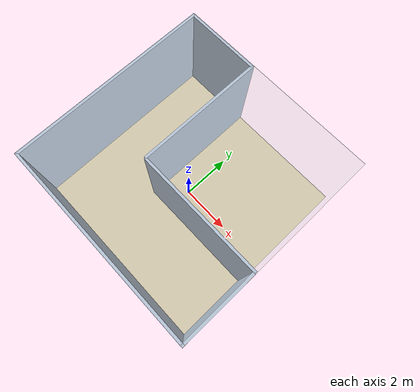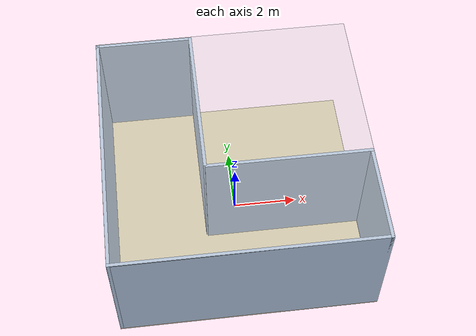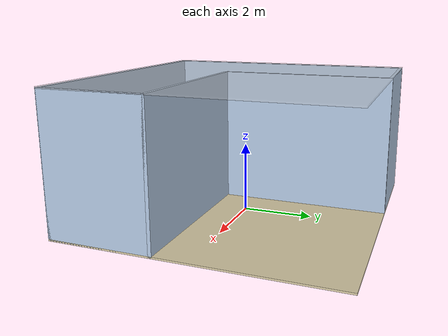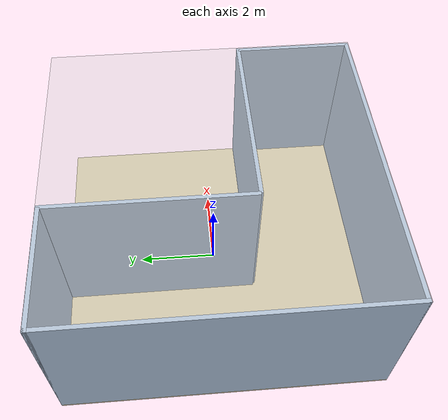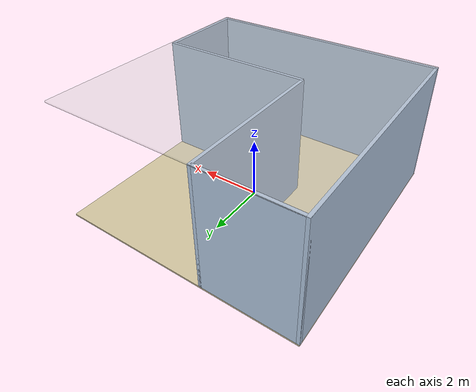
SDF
<sdf version="1.9">
 <world name="rl_room_L_corridor">
  <physics name="1ms" type="ignored">
   <max_step_size>0.001</max_step_size>
   <real_time_factor>1.0</real_time_factor>
  </physics>
  <plugin filename="gz-sim-physics-system" name="gz::sim::systems::Physics"/>
  <plugin filename="gz-sim-scene-broadcaster-system" name="gz::sim::systems::SceneBroadcaster"/>
  <plugin filename="gz-sim-user-commands-system" name="gz::sim::systems::UserCommands"/>
  <plugin filename="gz-sim-sensors-system" name="gz::sim::systems::Sensors">
   <render_engine>ogre2</render_engine>
  </plugin>
  <plugin filename="gz-sim-imu-system" name="gz::sim::systems::Imu"/>
  <plugin filename="gz-sim-navsat-system" name="gz::sim::systems::NavSat"/>
  <spherical_coordinates>
   <latitude_deg>-35.363262</latitude_deg>
   <longitude_deg>149.165237</longitude_deg>
   <elevation>584.0</elevation>
   <heading_deg>0</heading_deg>
   <surface_model>EARTH_WGS84</surface_model>
  </spherical_coordinates>
  <light type="directional" name="main_light">
   <cast_shadows>false</cast_shadows>
   <pose>0 0 10 0 0 0</pose>
   <diffuse>1.0 1.0 1.0 1</diffuse>
   <specular>0.5 0.5 0.5 1</specular>
   <direction>0.1 0.1 -1</direction>
  </light>
  <model name="floor">
   <static>true</static>
   <link name="link">
    <collision name="c"><geometry><box><size>8.0 8.0 0.05</size></box></geometry></collision>
    <visual name="v">
     <geometry><box><size>8.0 8.0 0.05</size></box></geometry>
     <material>
      <ambient>0.85 0.80 0.65 1</ambient>
      <diffuse>0.85 0.80 0.65 1</diffuse>
      <specular>0.1 0.1 0.1 1</specular>
     </material>
    </visual>
   </link>
  </model>
  <model name="ceiling">
   <static>true</static>
   <link name="ceiling_link">
    <collision name="ceiling_col">
     <pose>0 0 4.0 0 0 0</pose>
     <geometry><box><size>8.0 8.0 0.05</size></box></geometry>
    </collision>
    <visual name="ceiling_vis">
     <pose>0 0 4.0 0 0 0</pose>
     <geometry><box><size>8.0 8.0 0.05</size></box></geometry>
     <material><ambient>0.8 0.8 0.8 0.3</ambient><diffuse>0.8 0.8 0.8 0.3</diffuse></material>
    </visual>
   </link>
  </model>
  <model name="wall_bottom">
   <static>true</static>
   <pose>0.0 -3.95 2.0 0 0 0</pose>
   <link name="link">
    <collision name="c"><geometry><box><size>8.0 0.1 4.0</size></box></geometry></collision>
    <visual name="v">
     <geometry><box><size>8.0 0.1 4.0</size></box></geometry>
     <material><ambient>0.7 0.78 0.88 1</ambient><diffuse>0.7 0.78 0.88 1</diffuse></material>
    </visual>
   </link>
  </model>
  <model name="wall_left">
   <static>true</static>
   <pose>-3.95 0.0 2.0 0 0 0</pose>
   <link name="link">
    <collision name="c"><geometry><box><size>0.1 8.0 4.0</size></box></geometry></collision>
    <visual name="v">
     <geometry><box><size>0.1 8.0 4.0</size></box></geometry>
     <material><ambient>0.7 0.78 0.88 1</ambient><diffuse>0.7 0.78 0.88 1</diffuse></material>
    </visual>
   </link>
  </model>
  <model name="wall_vtop">
   <static>true</static>
   <pose>-2.5 3.95 2.0 0 0 0</pose>
   <link name="link">
    <collision name="c"><geometry><box><size>3.0 0.1 4.0</size></box></geometry></collision>
    <visual name="v">
     <geometry><box><size>3.0 0.1 4.0</size></box></geometry>
     <material><ambient>0.7 0.78 0.88 1</ambient><diffuse>0.7 0.78 0.88 1</diffuse></material>
    </visual>
   </link>
  </model>
  <model name="wall_hright">
   <static>true</static>
   <pose>3.95 -2.5 2.0 0 0 0</pose>
   <link name="link">
    <collision name="c"><geometry><box><size>0.1 3.0 4.0</size></box></geometry></collision>
    <visual name="v">
     <geometry><box><size>0.1 3.0 4.0</size></box></geometry>
     <material><ambient>0.7 0.78 0.88 1</ambient><diffuse>0.7 0.78 0.88 1</diffuse></material>
    </visual>
   </link>
  </model>
  <model name="wall_vinner">
   <static>true</static>
   <pose>-1.0 1.5 2.0 0 0 0</pose>
   <link name="link">
    <collision name="c"><geometry><box><size>0.1 5.0 4.0</size></box></geometry></collision>
    <visual name="v">
     <geometry><box><size>0.1 5.0 4.0</size></box></geometry>
     <material><ambient>0.7 0.78 0.88 1</ambient><diffuse>0.7 0.78 0.88 1</diffuse></material>
    </visual>
   </link>
  </model>
  <model name="wall_hinner">
   <static>true</static>
   <pose>1.5 -1.0 2.0 0 0 0</pose>
   <link name="link">
    <collision name="c"><geometry><box><size>5.0 0.1 4.0</size></box></geometry></collision>
    <visual name="v">
     <geometry><box><size>5.0 0.1 4.0</size></box></geometry>
     <material><ambient>0.7 0.78 0.88 1</ambient><diffuse>0.7 0.78 0.88 1</diffuse></material>
    </visual>
   </link>
  </model>
 </world>
</sdf>
